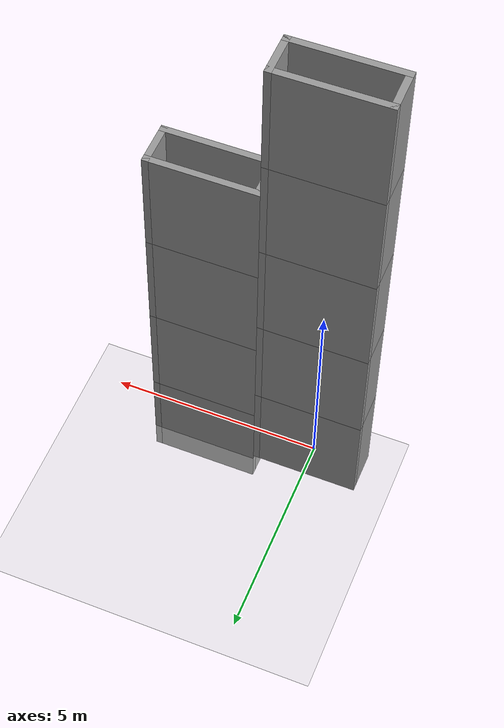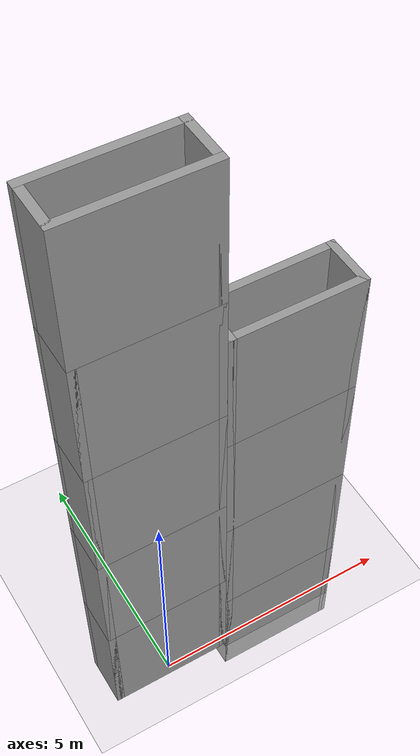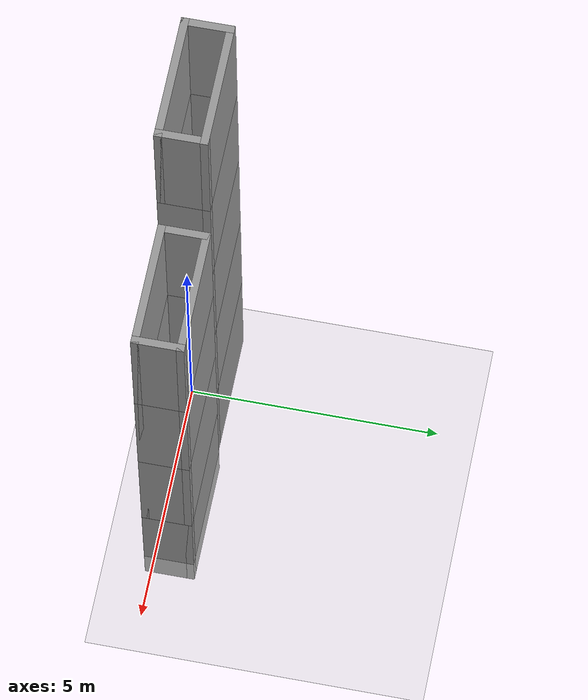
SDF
<sdf version="1.6">
 <world name="default">
  <model name="ground_plane">
   <static>1</static>
   <link name="link">
    <collision name="collision">
     <geometry><plane><normal>0 0 1</normal><size>100 100</size></plane></geometry>
     <surface><friction><ode><mu>100</mu><mu2>50</mu2></ode></friction></surface>
    </collision>
    <visual name="visual">
     <cast_shadows>0</cast_shadows>
     <geometry><plane><normal>0 0 1</normal><size>100 100</size></plane></geometry>
     <material>
      <script><uri>file://media/materials/scripts/gazebo.material</uri><name>Gazebo/Grey</name></script>
     </material>
    </visual>
   </link>
  </model>
  <model name="column25">
   <pose>-0.023775 0.294916 10.1143 0 -0 0</pose>
   <link name="Wall_0">
    <collision name="Wall_0_Collision">
     <geometry><box><size>2.5 0.15 2.5</size></box></geometry>
     <pose>0 0 1.25 0 -0 0</pose>
    </collision>
    <visual name="Wall_0_Visual">
     <pose>0 0 1.25 0 -0 0</pose>
     <geometry><box><size>2.5 0.15 2.5</size></box></geometry>
     <material>
      <script><uri>file://media/materials/scripts/gazebo.material</uri><name>Gazebo/Grey</name></script>
      <ambient>1 1 1 1</ambient>
     </material>
    </visual>
    <pose>0 -0.425 0 0 -0 0</pose>
   </link>
   <link name="Wall_1">
    <collision name="Wall_1_Collision">
     <geometry><box><size>1 0.15 2.5</size></box></geometry>
     <pose>0 0 1.25 0 -0 0</pose>
    </collision>
    <visual name="Wall_1_Visual">
     <pose>0 0 1.25 0 -0 0</pose>
     <geometry><box><size>1 0.15 2.5</size></box></geometry>
     <material>
      <script><uri>file://media/materials/scripts/gazebo.material</uri><name>Gazebo/Grey</name></script>
      <ambient>1 1 1 1</ambient>
     </material>
    </visual>
    <pose>1.175 0 0 0 -0 1.5708</pose>
   </link>
   <link name="Wall_2">
    <collision name="Wall_2_Collision">
     <geometry><box><size>2.5 0.15 2.5</size></box></geometry>
     <pose>0 0 1.25 0 -0 0</pose>
    </collision>
    <visual name="Wall_2_Visual">
     <pose>0 0 1.25 0 -0 0</pose>
     <geometry><box><size>2.5 0.15 2.5</size></box></geometry>
     <material>
      <script><uri>file://media/materials/scripts/gazebo.material</uri><name>Gazebo/Grey</name></script>
      <ambient>1 1 1 1</ambient>
     </material>
    </visual>
    <pose>0 0.425 0 0 -0 3.14159</pose>
   </link>
   <link name="Wall_3">
    <collision name="Wall_3_Collision">
     <geometry><box><size>1 0.15 2.5</size></box></geometry>
     <pose>0 0 1.25 0 -0 0</pose>
    </collision>
    <visual name="Wall_3_Visual">
     <pose>0 0 1.25 0 -0 0</pose>
     <geometry><box><size>1 0.15 2.5</size></box></geometry>
     <material>
      <script><uri>file://media/materials/scripts/gazebo.material</uri><name>Gazebo/Grey</name></script>
      <ambient>1 1 1 1</ambient>
     </material>
    </visual>
    <pose>-1.175 0 0 0 0 -1.5708</pose>
   </link>
   <static>1</static>
  </model>
  <model name="column25_clone">
   <pose>-0.023775 0.294916 7.61428 0 -0 0</pose>
   <link name="Wall_0">
    <collision name="Wall_0_Collision">
     <geometry><box><size>2.5 0.15 2.5</size></box></geometry>
     <pose>0 0 1.25 0 -0 0</pose>
    </collision>
    <visual name="Wall_0_Visual">
     <pose>0 0 1.25 0 -0 0</pose>
     <geometry><box><size>2.5 0.15 2.5</size></box></geometry>
     <material>
      <script><uri>file://media/materials/scripts/gazebo.material</uri><name>Gazebo/Grey</name></script>
      <ambient>1 1 1 1</ambient>
     </material>
    </visual>
    <pose>0 -0.425 0 0 -0 0</pose>
   </link>
   <link name="Wall_1">
    <collision name="Wall_1_Collision">
     <geometry><box><size>1 0.15 2.5</size></box></geometry>
     <pose>0 0 1.25 0 -0 0</pose>
    </collision>
    <visual name="Wall_1_Visual">
     <pose>0 0 1.25 0 -0 0</pose>
     <geometry><box><size>1 0.15 2.5</size></box></geometry>
     <material>
      <script><uri>file://media/materials/scripts/gazebo.material</uri><name>Gazebo/Grey</name></script>
      <ambient>1 1 1 1</ambient>
     </material>
    </visual>
    <pose>1.175 0 0 0 -0 1.5708</pose>
   </link>
   <link name="Wall_2">
    <collision name="Wall_2_Collision">
     <geometry><box><size>2.5 0.15 2.5</size></box></geometry>
     <pose>0 0 1.25 0 -0 0</pose>
    </collision>
    <visual name="Wall_2_Visual">
     <pose>0 0 1.25 0 -0 0</pose>
     <geometry><box><size>2.5 0.15 2.5</size></box></geometry>
     <material>
      <script><uri>file://media/materials/scripts/gazebo.material</uri><name>Gazebo/Grey</name></script>
      <ambient>1 1 1 1</ambient>
     </material>
    </visual>
    <pose>0 0.425 0 0 -0 3.14159</pose>
   </link>
   <link name="Wall_3">
    <collision name="Wall_3_Collision">
     <geometry><box><size>1 0.15 2.5</size></box></geometry>
     <pose>0 0 1.25 0 -0 0</pose>
    </collision>
    <visual name="Wall_3_Visual">
     <pose>0 0 1.25 0 -0 0</pose>
     <geometry><box><size>1 0.15 2.5</size></box></geometry>
     <material>
      <script><uri>file://media/materials/scripts/gazebo.material</uri><name>Gazebo/Grey</name></script>
      <ambient>1 1 1 1</ambient>
     </material>
    </visual>
    <pose>-1.175 0 0 0 0 -1.5708</pose>
   </link>
   <static>1</static>
  </model>
  <model name="column25_clone_0">
   <pose>-0.023776 0.294916 5.11428 0 -0 0</pose>
   <link name="Wall_0">
    <collision name="Wall_0_Collision">
     <geometry><box><size>2.5 0.15 2.5</size></box></geometry>
     <pose>0 0 1.25 0 -0 0</pose>
    </collision>
    <visual name="Wall_0_Visual">
     <pose>0 0 1.25 0 -0 0</pose>
     <geometry><box><size>2.5 0.15 2.5</size></box></geometry>
     <material>
      <script><uri>file://media/materials/scripts/gazebo.material</uri><name>Gazebo/Grey</name></script>
      <ambient>1 1 1 1</ambient>
     </material>
    </visual>
    <pose>0 -0.425 0 0 -0 0</pose>
   </link>
   <link name="Wall_1">
    <collision name="Wall_1_Collision">
     <geometry><box><size>1 0.15 2.5</size></box></geometry>
     <pose>0 0 1.25 0 -0 0</pose>
    </collision>
    <visual name="Wall_1_Visual">
     <pose>0 0 1.25 0 -0 0</pose>
     <geometry><box><size>1 0.15 2.5</size></box></geometry>
     <material>
      <script><uri>file://media/materials/scripts/gazebo.material</uri><name>Gazebo/Grey</name></script>
      <ambient>1 1 1 1</ambient>
     </material>
    </visual>
    <pose>1.175 0 0 0 -0 1.5708</pose>
   </link>
   <link name="Wall_2">
    <collision name="Wall_2_Collision">
     <geometry><box><size>2.5 0.15 2.5</size></box></geometry>
     <pose>0 0 1.25 0 -0 0</pose>
    </collision>
    <visual name="Wall_2_Visual">
     <pose>0 0 1.25 0 -0 0</pose>
     <geometry><box><size>2.5 0.15 2.5</size></box></geometry>
     <material>
      <script><uri>file://media/materials/scripts/gazebo.material</uri><name>Gazebo/Grey</name></script>
      <ambient>1 1 1 1</ambient>
     </material>
    </visual>
    <pose>0 0.425 0 0 -0 3.14159</pose>
   </link>
   <link name="Wall_3">
    <collision name="Wall_3_Collision">
     <geometry><box><size>1 0.15 2.5</size></box></geometry>
     <pose>0 0 1.25 0 -0 0</pose>
    </collision>
    <visual name="Wall_3_Visual">
     <pose>0 0 1.25 0 -0 0</pose>
     <geometry><box><size>1 0.15 2.5</size></box></geometry>
     <material>
      <script><uri>file://media/materials/scripts/gazebo.material</uri><name>Gazebo/Grey</name></script>
      <ambient>1 1 1 1</ambient>
     </material>
    </visual>
    <pose>-1.175 0 0 0 0 -1.5708</pose>
   </link>
   <static>1</static>
  </model>
  <model name="column25_clone_1">
   <pose>-0.023776 0.294916 2.61428 0 -0 0</pose>
   <link name="Wall_0">
    <collision name="Wall_0_Collision">
     <geometry><box><size>2.5 0.15 2.5</size></box></geometry>
     <pose>0 0 1.25 0 -0 0</pose>
    </collision>
    <visual name="Wall_0_Visual">
     <pose>0 0 1.25 0 -0 0</pose>
     <geometry><box><size>2.5 0.15 2.5</size></box></geometry>
     <material>
      <script><uri>file://media/materials/scripts/gazebo.material</uri><name>Gazebo/Grey</name></script>
      <ambient>1 1 1 1</ambient>
     </material>
    </visual>
    <pose>0 -0.425 0 0 -0 0</pose>
   </link>
   <link name="Wall_1">
    <collision name="Wall_1_Collision">
     <geometry><box><size>1 0.15 2.5</size></box></geometry>
     <pose>0 0 1.25 0 -0 0</pose>
    </collision>
    <visual name="Wall_1_Visual">
     <pose>0 0 1.25 0 -0 0</pose>
     <geometry><box><size>1 0.15 2.5</size></box></geometry>
     <material>
      <script><uri>file://media/materials/scripts/gazebo.material</uri><name>Gazebo/Grey</name></script>
      <ambient>1 1 1 1</ambient>
     </material>
    </visual>
    <pose>1.175 0 0 0 -0 1.5708</pose>
   </link>
   <link name="Wall_2">
    <collision name="Wall_2_Collision">
     <geometry><box><size>2.5 0.15 2.5</size></box></geometry>
     <pose>0 0 1.25 0 -0 0</pose>
    </collision>
    <visual name="Wall_2_Visual">
     <pose>0 0 1.25 0 -0 0</pose>
     <geometry><box><size>2.5 0.15 2.5</size></box></geometry>
     <material>
      <script><uri>file://media/materials/scripts/gazebo.material</uri><name>Gazebo/Grey</name></script>
      <ambient>1 1 1 1</ambient>
     </material>
    </visual>
    <pose>0 0.425 0 0 -0 3.14159</pose>
   </link>
   <link name="Wall_3">
    <collision name="Wall_3_Collision">
     <geometry><box><size>1 0.15 2.5</size></box></geometry>
     <pose>0 0 1.25 0 -0 0</pose>
    </collision>
    <visual name="Wall_3_Visual">
     <pose>0 0 1.25 0 -0 0</pose>
     <geometry><box><size>1 0.15 2.5</size></box></geometry>
     <material>
      <script><uri>file://media/materials/scripts/gazebo.material</uri><name>Gazebo/Grey</name></script>
      <ambient>1 1 1 1</ambient>
     </material>
    </visual>
    <pose>-1.175 0 0 0 0 -1.5708</pose>
   </link>
   <static>1</static>
  </model>
  <model name="column25_clone_2">
   <pose>-0.023776 0.294916 0.114275 0 -0 0</pose>
   <link name="Wall_0">
    <collision name="Wall_0_Collision">
     <geometry><box><size>2.5 0.15 2.5</size></box></geometry>
     <pose>0 0 1.25 0 -0 0</pose>
    </collision>
    <visual name="Wall_0_Visual">
     <pose>0 0 1.25 0 -0 0</pose>
     <geometry><box><size>2.5 0.15 2.5</size></box></geometry>
     <material>
      <script><uri>file://media/materials/scripts/gazebo.material</uri><name>Gazebo/Grey</name></script>
      <ambient>1 1 1 1</ambient>
     </material>
    </visual>
    <pose>0 -0.425 0 0 -0 0</pose>
   </link>
   <link name="Wall_1">
    <collision name="Wall_1_Collision">
     <geometry><box><size>1 0.15 2.5</size></box></geometry>
     <pose>0 0 1.25 0 -0 0</pose>
    </collision>
    <visual name="Wall_1_Visual">
     <pose>0 0 1.25 0 -0 0</pose>
     <geometry><box><size>1 0.15 2.5</size></box></geometry>
     <material>
      <script><uri>file://media/materials/scripts/gazebo.material</uri><name>Gazebo/Grey</name></script>
      <ambient>1 1 1 1</ambient>
     </material>
    </visual>
    <pose>1.175 0 0 0 -0 1.5708</pose>
   </link>
   <link name="Wall_2">
    <collision name="Wall_2_Collision">
     <geometry><box><size>2.5 0.15 2.5</size></box></geometry>
     <pose>0 0 1.25 0 -0 0</pose>
    </collision>
    <visual name="Wall_2_Visual">
     <pose>0 0 1.25 0 -0 0</pose>
     <geometry><box><size>2.5 0.15 2.5</size></box></geometry>
     <material>
      <script><uri>file://media/materials/scripts/gazebo.material</uri><name>Gazebo/Grey</name></script>
      <ambient>1 1 1 1</ambient>
     </material>
    </visual>
    <pose>0 0.425 0 0 -0 3.14159</pose>
   </link>
   <link name="Wall_3">
    <collision name="Wall_3_Collision">
     <geometry><box><size>1 0.15 2.5</size></box></geometry>
     <pose>0 0 1.25 0 -0 0</pose>
    </collision>
    <visual name="Wall_3_Visual">
     <pose>0 0 1.25 0 -0 0</pose>
     <geometry><box><size>1 0.15 2.5</size></box></geometry>
     <material>
      <script><uri>file://media/materials/scripts/gazebo.material</uri><name>Gazebo/Grey</name></script>
      <ambient>1 1 1 1</ambient>
     </material>
    </visual>
    <pose>-1.175 0 0 0 0 -1.5708</pose>
   </link>
   <static>1</static>
  </model>
  <model name="column25_clone_2_clone">
   <pose>2.47622 0.294925 -0.719058 0 -0 7e-06</pose>
   <link name="Wall_0">
    <collision name="Wall_0_Collision">
     <geometry><box><size>2.5 0.15 2.5</size></box></geometry>
     <pose>0 0 1.25 0 -0 0</pose>
    </collision>
    <visual name="Wall_0_Visual">
     <pose>0 0 1.25 0 -0 0</pose>
     <geometry><box><size>2.5 0.15 2.5</size></box></geometry>
     <material>
      <script><uri>file://media/materials/scripts/gazebo.material</uri><name>Gazebo/Grey</name></script>
      <ambient>1 1 1 1</ambient>
     </material>
    </visual>
    <pose>0 -0.425 0 0 -0 0</pose>
   </link>
   <link name="Wall_1">
    <collision name="Wall_1_Collision">
     <geometry><box><size>1 0.15 2.5</size></box></geometry>
     <pose>0 0 1.25 0 -0 0</pose>
    </collision>
    <visual name="Wall_1_Visual">
     <pose>0 0 1.25 0 -0 0</pose>
     <geometry><box><size>1 0.15 2.5</size></box></geometry>
     <material>
      <script><uri>file://media/materials/scripts/gazebo.material</uri><name>Gazebo/Grey</name></script>
      <ambient>1 1 1 1</ambient>
     </material>
    </visual>
    <pose>1.175 0 0 0 -0 1.5708</pose>
   </link>
   <link name="Wall_2">
    <collision name="Wall_2_Collision">
     <geometry><box><size>2.5 0.15 2.5</size></box></geometry>
     <pose>0 0 1.25 0 -0 0</pose>
    </collision>
    <visual name="Wall_2_Visual">
     <pose>0 0 1.25 0 -0 0</pose>
     <geometry><box><size>2.5 0.15 2.5</size></box></geometry>
     <material>
      <script><uri>file://media/materials/scripts/gazebo.material</uri><name>Gazebo/Grey</name></script>
      <ambient>1 1 1 1</ambient>
     </material>
    </visual>
    <pose>0 0.425 0 0 -0 3.14159</pose>
   </link>
   <link name="Wall_3">
    <collision name="Wall_3_Collision">
     <geometry><box><size>1 0.15 2.5</size></box></geometry>
     <pose>0 0 1.25 0 -0 0</pose>
    </collision>
    <visual name="Wall_3_Visual">
     <pose>0 0 1.25 0 -0 0</pose>
     <geometry><box><size>1 0.15 2.5</size></box></geometry>
     <material>
      <script><uri>file://media/materials/scripts/gazebo.material</uri><name>Gazebo/Grey</name></script>
      <ambient>1 1 1 1</ambient>
     </material>
    </visual>
    <pose>-1.175 0 0 0 0 -1.5708</pose>
   </link>
   <static>1</static>
  </model>
  <model name="column25_clone_2_clone_clone">
   <pose>2.47622 0.294926 1.78094 0 -0 7e-06</pose>
   <link name="Wall_0">
    <collision name="Wall_0_Collision">
     <geometry><box><size>2.5 0.15 2.5</size></box></geometry>
     <pose>0 0 1.25 0 -0 0</pose>
    </collision>
    <visual name="Wall_0_Visual">
     <pose>0 0 1.25 0 -0 0</pose>
     <geometry><box><size>2.5 0.15 2.5</size></box></geometry>
     <material>
      <script><uri>file://media/materials/scripts/gazebo.material</uri><name>Gazebo/Grey</name></script>
      <ambient>1 1 1 1</ambient>
     </material>
    </visual>
    <pose>0 -0.425 0 0 -0 0</pose>
   </link>
   <link name="Wall_1">
    <collision name="Wall_1_Collision">
     <geometry><box><size>1 0.15 2.5</size></box></geometry>
     <pose>0 0 1.25 0 -0 0</pose>
    </collision>
    <visual name="Wall_1_Visual">
     <pose>0 0 1.25 0 -0 0</pose>
     <geometry><box><size>1 0.15 2.5</size></box></geometry>
     <material>
      <script><uri>file://media/materials/scripts/gazebo.material</uri><name>Gazebo/Grey</name></script>
      <ambient>1 1 1 1</ambient>
     </material>
    </visual>
    <pose>1.175 0 0 0 -0 1.5708</pose>
   </link>
   <link name="Wall_2">
    <collision name="Wall_2_Collision">
     <geometry><box><size>2.5 0.15 2.5</size></box></geometry>
     <pose>0 0 1.25 0 -0 0</pose>
    </collision>
    <visual name="Wall_2_Visual">
     <pose>0 0 1.25 0 -0 0</pose>
     <geometry><box><size>2.5 0.15 2.5</size></box></geometry>
     <material>
      <script><uri>file://media/materials/scripts/gazebo.material</uri><name>Gazebo/Grey</name></script>
      <ambient>1 1 1 1</ambient>
     </material>
    </visual>
    <pose>0 0.425 0 0 -0 3.14159</pose>
   </link>
   <link name="Wall_3">
    <collision name="Wall_3_Collision">
     <geometry><box><size>1 0.15 2.5</size></box></geometry>
     <pose>0 0 1.25 0 -0 0</pose>
    </collision>
    <visual name="Wall_3_Visual">
     <pose>0 0 1.25 0 -0 0</pose>
     <geometry><box><size>1 0.15 2.5</size></box></geometry>
     <material>
      <script><uri>file://media/materials/scripts/gazebo.material</uri><name>Gazebo/Grey</name></script>
      <ambient>1 1 1 1</ambient>
     </material>
    </visual>
    <pose>-1.175 0 0 0 0 -1.5708</pose>
   </link>
   <static>1</static>
  </model>
  <model name="column25_clone_2_clone_clone_clone">
   <pose>2.47622 0.294926 4.28094 0 -0 7e-06</pose>
   <link name="Wall_0">
    <collision name="Wall_0_Collision">
     <geometry><box><size>2.5 0.15 2.5</size></box></geometry>
     <pose>0 0 1.25 0 -0 0</pose>
    </collision>
    <visual name="Wall_0_Visual">
     <pose>0 0 1.25 0 -0 0</pose>
     <geometry><box><size>2.5 0.15 2.5</size></box></geometry>
     <material>
      <script><uri>file://media/materials/scripts/gazebo.material</uri><name>Gazebo/Grey</name></script>
      <ambient>1 1 1 1</ambient>
     </material>
    </visual>
    <pose>0 -0.425 0 0 -0 0</pose>
   </link>
   <link name="Wall_1">
    <collision name="Wall_1_Collision">
     <geometry><box><size>1 0.15 2.5</size></box></geometry>
     <pose>0 0 1.25 0 -0 0</pose>
    </collision>
    <visual name="Wall_1_Visual">
     <pose>0 0 1.25 0 -0 0</pose>
     <geometry><box><size>1 0.15 2.5</size></box></geometry>
     <material>
      <script><uri>file://media/materials/scripts/gazebo.material</uri><name>Gazebo/Grey</name></script>
      <ambient>1 1 1 1</ambient>
     </material>
    </visual>
    <pose>1.175 0 0 0 -0 1.5708</pose>
   </link>
   <link name="Wall_2">
    <collision name="Wall_2_Collision">
     <geometry><box><size>2.5 0.15 2.5</size></box></geometry>
     <pose>0 0 1.25 0 -0 0</pose>
    </collision>
    <visual name="Wall_2_Visual">
     <pose>0 0 1.25 0 -0 0</pose>
     <geometry><box><size>2.5 0.15 2.5</size></box></geometry>
     <material>
      <script><uri>file://media/materials/scripts/gazebo.material</uri><name>Gazebo/Grey</name></script>
      <ambient>1 1 1 1</ambient>
     </material>
    </visual>
    <pose>0 0.425 0 0 -0 3.14159</pose>
   </link>
   <link name="Wall_3">
    <collision name="Wall_3_Collision">
     <geometry><box><size>1 0.15 2.5</size></box></geometry>
     <pose>0 0 1.25 0 -0 0</pose>
    </collision>
    <visual name="Wall_3_Visual">
     <pose>0 0 1.25 0 -0 0</pose>
     <geometry><box><size>1 0.15 2.5</size></box></geometry>
     <material>
      <script><uri>file://media/materials/scripts/gazebo.material</uri><name>Gazebo/Grey</name></script>
      <ambient>1 1 1 1</ambient>
     </material>
    </visual>
    <pose>-1.175 0 0 0 0 -1.5708</pose>
   </link>
   <static>1</static>
  </model>
  <model name="column25_clone_2_clone_clone_clone_clone">
   <pose>2.47622 0.294926 6.78094 0 -0 7e-06</pose>
   <link name="Wall_0">
    <collision name="Wall_0_Collision">
     <geometry><box><size>2.5 0.15 2.5</size></box></geometry>
     <pose>0 0 1.25 0 -0 0</pose>
    </collision>
    <visual name="Wall_0_Visual">
     <pose>0 0 1.25 0 -0 0</pose>
     <geometry><box><size>2.5 0.15 2.5</size></box></geometry>
     <material>
      <script><uri>file://media/materials/scripts/gazebo.material</uri><name>Gazebo/Grey</name></script>
      <ambient>1 1 1 1</ambient>
     </material>
    </visual>
    <pose>0 -0.425 0 0 -0 0</pose>
   </link>
   <link name="Wall_1">
    <collision name="Wall_1_Collision">
     <geometry><box><size>1 0.15 2.5</size></box></geometry>
     <pose>0 0 1.25 0 -0 0</pose>
    </collision>
    <visual name="Wall_1_Visual">
     <pose>0 0 1.25 0 -0 0</pose>
     <geometry><box><size>1 0.15 2.5</size></box></geometry>
     <material>
      <script><uri>file://media/materials/scripts/gazebo.material</uri><name>Gazebo/Grey</name></script>
      <ambient>1 1 1 1</ambient>
     </material>
    </visual>
    <pose>1.175 0 0 0 -0 1.5708</pose>
   </link>
   <link name="Wall_2">
    <collision name="Wall_2_Collision">
     <geometry><box><size>2.5 0.15 2.5</size></box></geometry>
     <pose>0 0 1.25 0 -0 0</pose>
    </collision>
    <visual name="Wall_2_Visual">
     <pose>0 0 1.25 0 -0 0</pose>
     <geometry><box><size>2.5 0.15 2.5</size></box></geometry>
     <material>
      <script><uri>file://media/materials/scripts/gazebo.material</uri><name>Gazebo/Grey</name></script>
      <ambient>1 1 1 1</ambient>
     </material>
    </visual>
    <pose>0 0.425 0 0 -0 3.14159</pose>
   </link>
   <link name="Wall_3">
    <collision name="Wall_3_Collision">
     <geometry><box><size>1 0.15 2.5</size></box></geometry>
     <pose>0 0 1.25 0 -0 0</pose>
    </collision>
    <visual name="Wall_3_Visual">
     <pose>0 0 1.25 0 -0 0</pose>
     <geometry><box><size>1 0.15 2.5</size></box></geometry>
     <material>
      <script><uri>file://media/materials/scripts/gazebo.material</uri><name>Gazebo/Grey</name></script>
      <ambient>1 1 1 1</ambient>
     </material>
    </visual>
    <pose>-1.175 0 0 0 0 -1.5708</pose>
   </link>
   <static>1</static>
  </model>
 </world>
</sdf>
